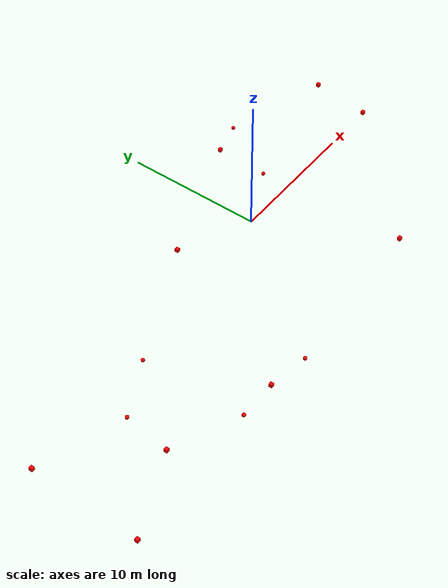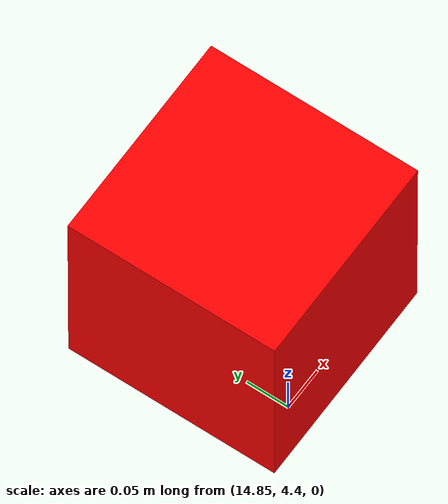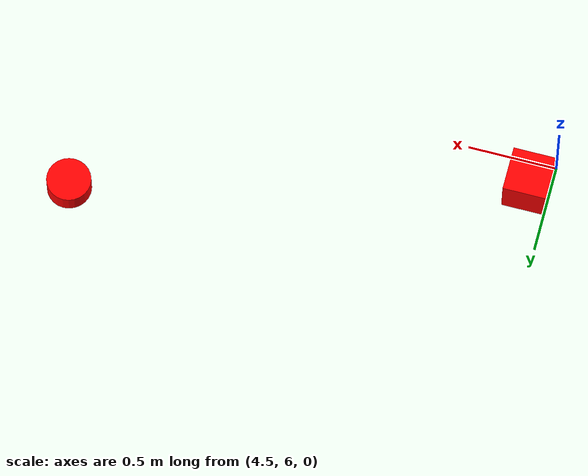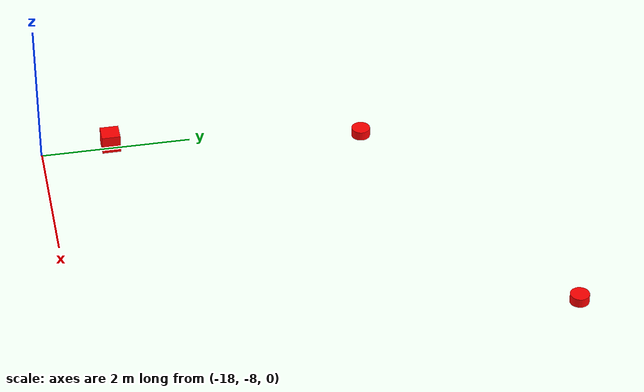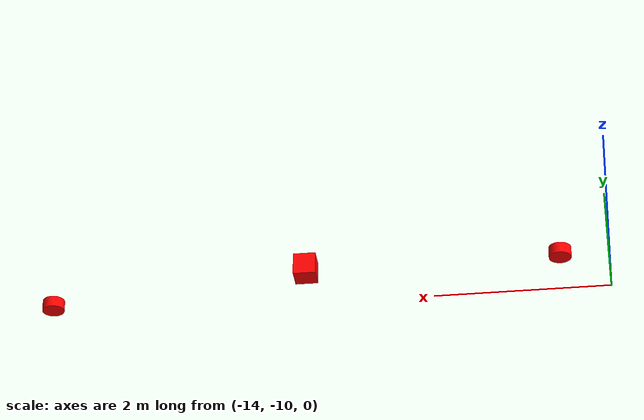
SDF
<?xml version="1.0" ?>
<sdf version="1.6">
	<model name="boxes-maze">
		<link name="box-1">
			<pose>-13.802956 -1.684998 0 0 0 0</pose>
			<inertial>
				<inertia>
					<ixx>0.00050000</ixx>
					<iyy>0.00050000</iyy>
					<izz>0.00050000</izz>
				</inertia>
				<mass>0.10000000</mass>
			</inertial>
			<visual name="box-1_vis">
				<geometry>
					<cylinder>
						<radius>0.125</radius>
						<length>0.125</length>
					</cylinder>
				</geometry>
				<material>
					<ambient>1 0 0 1</ambient>
					<diffuse>1 0 0 1</diffuse>
					<specular>1 0 0 1</specular>
					<emissive>0.1 0.1 0.1 1</emissive>
				</material>
			</visual>
			<collision name="box-1_col">
				<geometry>
					<cylinder>
						<radius>0.125</radius>
						<length>0.125</length>
					</cylinder>
				</geometry>
			</collision>
		</link>
		<link name="box-2">
			<pose>-17.752222 -3.684369 0 0 0 0</pose>
			<inertial>
				<inertia>
					<ixx>0.00050000</ixx>
					<iyy>0.00050000</iyy>
					<izz>0.00050000</izz>
				</inertia>
				<mass>0.10000000</mass>
			</inertial>
			<visual name="box-2_vis">
				<geometry>
					<cylinder>
						<radius>0.125</radius>
						<length>0.125</length>
					</cylinder>
				</geometry>
				<material>
					<ambient>1 0 0 1</ambient>
					<diffuse>1 0 0 1</diffuse>
					<specular>1 0 0 1</specular>
					<emissive>0.1 0.1 0.1 1</emissive>
				</material>
			</visual>
			<collision name="box-2_col">
				<geometry>
					<cylinder>
						<radius>0.125</radius>
						<length>0.125</length>
					</cylinder>
				</geometry>
			</collision>
		</link>
		<link name="box-3">
			<pose>-23.848755 -1.587422 0 0 0 0</pose>
			<inertial>
				<inertia>
					<ixx>0.00050000</ixx>
					<iyy>0.00050000</iyy>
					<izz>0.00050000</izz>
				</inertia>
				<mass>0.10000000</mass>
			</inertial>
			<visual name="box-3_vis">
				<geometry>
					<box>
						<size>0.25 0.25 0.25</size>
					</box>
				</geometry>
				<material>
					<ambient>1 0 0 1</ambient>
					<diffuse>1 0 0 1</diffuse>
					<specular>1 0 0 1</specular>
					<emissive>0.1 0.1 0.1 1</emissive>
				</material>
			</visual>
			<collision name="box-3_col">
				<geometry>
					<box>
						<size>0.25 0.25 0.25</size>
					</box>
				</geometry>
			</collision>
		</link>
		<link name="box-4">
			<pose>-23.848755 -9.487605 0 0 0 0</pose>
			<inertial>
				<inertia>
					<ixx>0.00050000</ixx>
					<iyy>0.00050000</iyy>
					<izz>0.00050000</izz>
				</inertia>
				<mass>0.10000000</mass>
			</inertial>
			<visual name="box-4_vis">
				<geometry>
					<box>
						<size>0.25 0.25 0.25</size>
					</box>
				</geometry>
				<material>
					<ambient>1 0 0 1</ambient>
					<diffuse>1 0 0 1</diffuse>
					<specular>1 0 0 1</specular>
					<emissive>0.1 0.1 0.1 1</emissive>
				</material>
			</visual>
			<collision name="box-4_col">
				<geometry>
					<box>
						<size>0.25 0.25 0.25</size>
					</box>
				</geometry>
			</collision>
		</link>
		<link name="box-5">
			<pose>-10.633201 -9.195015 0 0 0 0</pose>
			<inertial>
				<inertia>
					<ixx>0.00050000</ixx>
					<iyy>0.00050000</iyy>
					<izz>0.00050000</izz>
				</inertia>
				<mass>0.10000000</mass>
			</inertial>
			<visual name="box-5_vis">
				<geometry>
					<box>
						<size>0.25 0.25 0.25</size>
					</box>
				</geometry>
				<material>
					<ambient>1 0 0 1</ambient>
					<diffuse>1 0 0 1</diffuse>
					<specular>1 0 0 1</specular>
					<emissive>0.1 0.1 0.1 1</emissive>
				</material>
			</visual>
			<collision name="box-5_col">
				<geometry>
					<box>
						<size>0.25 0.25 0.25</size>
					</box>
				</geometry>
			</collision>
		</link>
		<link name="box-6">
			<pose>-13.461333 -9.195015 0 0 0 0</pose>
			<inertial>
				<inertia>
					<ixx>0.00050000</ixx>
					<iyy>0.00050000</iyy>
					<izz>0.00050000</izz>
				</inertia>
				<mass>0.10000000</mass>
			</inertial>
			<visual name="box-6_vis">
				<geometry>
					<cylinder>
						<radius>0.125</radius>
						<length>0.125</length>
					</cylinder>
				</geometry>
				<material>
					<ambient>1 0 0 1</ambient>
					<diffuse>1 0 0 1</diffuse>
					<specular>1 0 0 1</specular>
					<emissive>0.1 0.1 0.1 1</emissive>
				</material>
			</visual>
			<collision name="box-6_col">
				<geometry>
					<cylinder>
						<radius>0.125</radius>
						<length>0.125</length>
					</cylinder>
				</geometry>
			</collision>
		</link>
		<link name="box-7">
			<pose>-18.191462 -7.049313 0 0 0 0</pose>
			<inertial>
				<inertia>
					<ixx>0.00050000</ixx>
					<iyy>0.00050000</iyy>
					<izz>0.00050000</izz>
				</inertia>
				<mass>0.10000000</mass>
			</inertial>
			<visual name="box-7_vis">
				<geometry>
					<box>
						<size>0.25 0.25 0.25</size>
					</box>
				</geometry>
				<material>
					<ambient>1 0 0 1</ambient>
					<diffuse>1 0 0 1</diffuse>
					<specular>1 0 0 1</specular>
					<emissive>0.1 0.1 0.1 1</emissive>
				</material>
			</visual>
			<collision name="box-7_col">
				<geometry>
					<box>
						<size>0.25 0.25 0.25</size>
					</box>
				</geometry>
			</collision>
		</link>
		<link name="box-8">
			<pose>-7.684233 -9.690165 0 0 0 0</pose>
			<inertial>
				<inertia>
					<ixx>0.00050000</ixx>
					<iyy>0.00050000</iyy>
					<izz>0.00050000</izz>
				</inertia>
				<mass>0.10000000</mass>
			</inertial>
			<visual name="box-8_vis">
				<geometry>
					<cylinder>
						<radius>0.125</radius>
						<length>0.125</length>
					</cylinder>
				</geometry>
				<material>
					<ambient>1 0 0 1</ambient>
					<diffuse>1 0 0 1</diffuse>
					<specular>1 0 0 1</specular>
					<emissive>0.1 0.1 0.1 1</emissive>
				</material>
			</visual>
			<collision name="box-8_col">
				<geometry>
					<cylinder>
						<radius>0.125</radius>
						<length>0.125</length>
					</cylinder>
				</geometry>
			</collision>
		</link>
		<link name="box-9">
			<pose>-5.093814 2.435014 0 0 0 0</pose>
			<inertial>
				<inertia>
					<ixx>0.00050000</ixx>
					<iyy>0.00050000</iyy>
					<izz>0.00050000</izz>
				</inertia>
				<mass>0.10000000</mass>
			</inertial>
			<visual name="box-9_vis">
				<geometry>
					<box>
						<size>0.25 0.25 0.25</size>
					</box>
				</geometry>
				<material>
					<ambient>1 0 0 1</ambient>
					<diffuse>1 0 0 1</diffuse>
					<specular>1 0 0 1</specular>
					<emissive>0.1 0.1 0.1 1</emissive>
				</material>
			</visual>
			<collision name="box-9_col">
				<geometry>
					<box>
						<size>0.25 0.25 0.25</size>
					</box>
				</geometry>
			</collision>
		</link>
		<link name="box-10">
			<pose>4.694657 -8.964105 0 0 0 0</pose>
			<inertial>
				<inertia>
					<ixx>0.00050000</ixx>
					<iyy>0.00050000</iyy>
					<izz>0.00050000</izz>
				</inertia>
				<mass>0.10000000</mass>
			</inertial>
			<visual name="box-10_vis">
				<geometry>
					<box>
						<size>0.25 0.25 0.25</size>
					</box>
				</geometry>
				<material>
					<ambient>1 0 0 1</ambient>
					<diffuse>1 0 0 1</diffuse>
					<specular>1 0 0 1</specular>
					<emissive>0.1 0.1 0.1 1</emissive>
				</material>
			</visual>
			<collision name="box-10_col">
				<geometry>
					<box>
						<size>0.25 0.25 0.25</size>
					</box>
				</geometry>
			</collision>
		</link>
		<link name="box-11">
			<pose>4.62529 6.112346 0 0 0 0</pose>
			<inertial>
				<inertia>
					<ixx>0.00050000</ixx>
					<iyy>0.00050000</iyy>
					<izz>0.00050000</izz>
				</inertia>
				<mass>0.10000000</mass>
			</inertial>
			<visual name="box-11_vis">
				<geometry>
					<box>
						<size>0.25 0.25 0.25</size>
					</box>
				</geometry>
				<material>
					<ambient>1 0 0 1</ambient>
					<diffuse>1 0 0 1</diffuse>
					<specular>1 0 0 1</specular>
					<emissive>0.1 0.1 0.1 1</emissive>
				</material>
			</visual>
			<collision name="box-11_col">
				<geometry>
					<box>
						<size>0.25 0.25 0.25</size>
					</box>
				</geometry>
			</collision>
		</link>
		<link name="box-12">
			<pose>4.41682 2.152175 0 0 0 0</pose>
			<inertial>
				<inertia>
					<ixx>0.00050000</ixx>
					<iyy>0.00050000</iyy>
					<izz>0.00050000</izz>
				</inertia>
				<mass>0.10000000</mass>
			</inertial>
			<visual name="box-12_vis">
				<geometry>
					<cylinder>
						<radius>0.125</radius>
						<length>0.125</length>
					</cylinder>
				</geometry>
				<material>
					<ambient>1 0 0 1</ambient>
					<diffuse>1 0 0 1</diffuse>
					<specular>1 0 0 1</specular>
					<emissive>0.1 0.1 0.1 1</emissive>
				</material>
			</visual>
			<collision name="box-12_col">
				<geometry>
					<cylinder>
						<radius>0.125</radius>
						<length>0.125</length>
					</cylinder>
				</geometry>
			</collision>
		</link>
		<link name="box-13">
			<pose>7.09198 6.781821 0 0 0 0</pose>
			<inertial>
				<inertia>
					<ixx>0.00050000</ixx>
					<iyy>0.00050000</iyy>
					<izz>0.00050000</izz>
				</inertia>
				<mass>0.10000000</mass>
			</inertial>
			<visual name="box-13_vis">
				<geometry>
					<cylinder>
						<radius>0.125</radius>
						<length>0.125</length>
					</cylinder>
				</geometry>
				<material>
					<ambient>1 0 0 1</ambient>
					<diffuse>1 0 0 1</diffuse>
					<specular>1 0 0 1</specular>
					<emissive>0.1 0.1 0.1 1</emissive>
				</material>
			</visual>
			<collision name="box-13_col">
				<geometry>
					<cylinder>
						<radius>0.125</radius>
						<length>0.125</length>
					</cylinder>
				</geometry>
			</collision>
		</link>
		<link name="box-14">
			<pose>14.245543 0.066458 0 0 0 0</pose>
			<inertial>
				<inertia>
					<ixx>0.00050000</ixx>
					<iyy>0.00050000</iyy>
					<izz>0.00050000</izz>
				</inertia>
				<mass>0.10000000</mass>
			</inertial>
			<visual name="box-14_vis">
				<geometry>
					<box>
						<size>0.25 0.25 0.25</size>
					</box>
				</geometry>
				<material>
					<ambient>1 0 0 1</ambient>
					<diffuse>1 0 0 1</diffuse>
					<specular>1 0 0 1</specular>
					<emissive>0.1 0.1 0.1 1</emissive>
				</material>
			</visual>
			<collision name="box-14_col">
				<geometry>
					<box>
						<size>0.25 0.25 0.25</size>
					</box>
				</geometry>
			</collision>
		</link>
		<link name="box-15">
			<pose>14.962285 4.533116 0 0 0 0</pose>
			<inertial>
				<inertia>
					<ixx>0.00050000</ixx>
					<iyy>0.00050000</iyy>
					<izz>0.00050000</izz>
				</inertia>
				<mass>0.10000000</mass>
			</inertial>
			<visual name="box-15_vis">
				<geometry>
					<box>
						<size>0.25 0.25 0.25</size>
					</box>
				</geometry>
				<material>
					<ambient>1 0 0 1</ambient>
					<diffuse>1 0 0 1</diffuse>
					<specular>1 0 0 1</specular>
					<emissive>0.1 0.1 0.1 1</emissive>
				</material>
			</visual>
			<collision name="box-15_col">
				<geometry>
					<box>
						<size>0.25 0.25 0.25</size>
					</box>
				</geometry>
			</collision>
		</link>
	</model>
</sdf>
